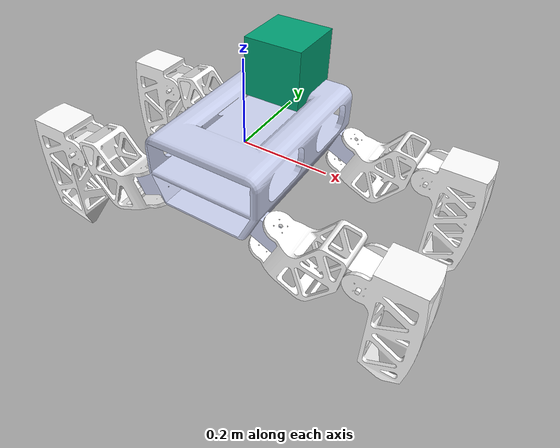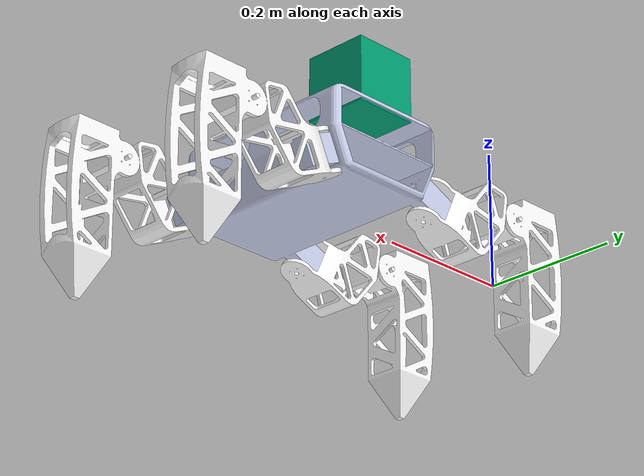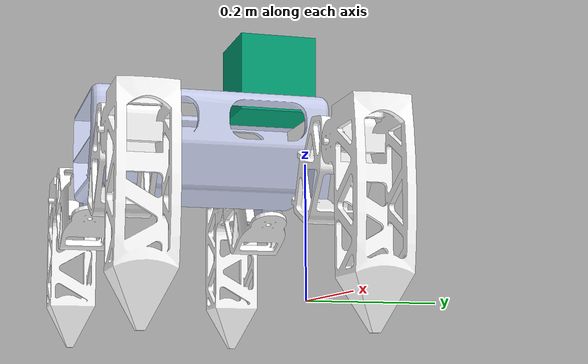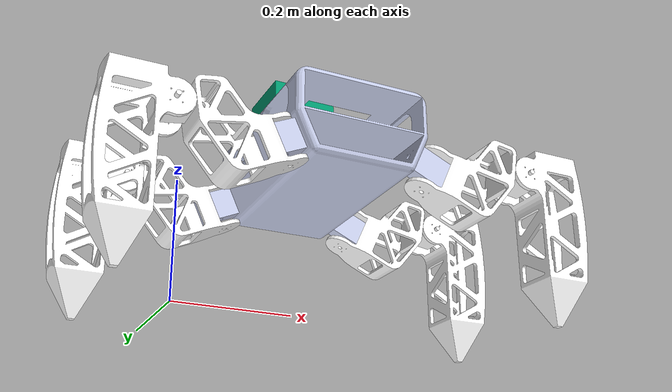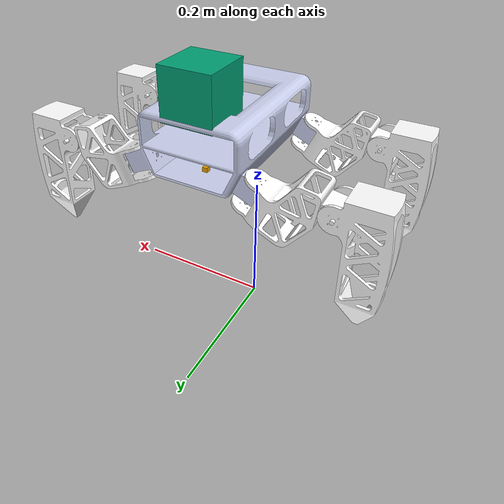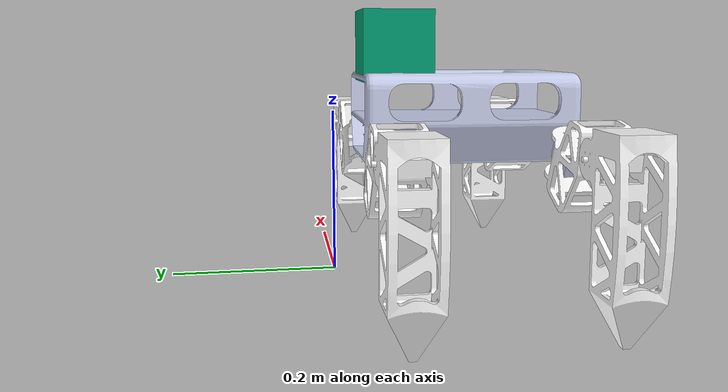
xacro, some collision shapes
<?xml version='1.0'?>
<robot name="insect" xmlns:xacro="http://www.ros.org/wiki/xacro">

<!-- Joint properties -->
<xacro:property name="pi" value="3.1415926535897931"/>
<xacro:property name="joint_lower_limit" value="-${pi/12}"/>
<xacro:property name="joint_upper_limit" value="${pi/12}"/>
<xacro:property name="joint_effort" value="6.0"/>
<xacro:property name="joint_velocity" value="0.524"/>

<xacro:property name="camera_link" value="0.01" /> <!-- Size of square 'camera' box -->
<!--macro param-->
<xacro:macro name="default_inertial" params="mass">
   <inertial>
     <mass value="${mass}" />
     <inertia ixx="1.0" ixy="0.0" ixz="0.0" iyy="1.0" iyz="0.0" izz="1.0" />
   </inertial>
 </xacro:macro>
  <!--IMU sensor_link-->
   <link name="imu_link">
     <visual>
       <origin xyz="0 0 0 " rpy="0 0 0" />
       <geometry>
         <box size="0.01 0.01 0.01"/> <!--box size="0.001 0.001 0.001"/-->
       </geometry>
     </visual>
     <collision>
       <origin rpy="0 0 0 " xyz="0 0 0"/>
       <geometry>
         <box size="0.01 0.01 0.01 "/>
       </geometry>
     </collision>
   </link>
   <!--IMU sensor joint-->
   <joint name="imu_joint" type="fixed">
     <axis xyz="0.01 0 0.01"/>
     <origin xyz="0.15 -0.1 0.132"/>
     <parent link="torso_base"/>
     <child link="imu_link"/>
   </joint>

   <!--camera link-->
   <link name="camera_link">
   <collision>
     <origin xyz="0 0 0" rpy="0 0 0"/>
     <geometry>
   <box size="${camera_link} ${camera_link} ${camera_link}"/>
     </geometry>
   </collision>

   <visual>
     <origin xyz="0 0 0" rpy="0 0 0"/>
     <geometry>
   <box size="${camera_link} ${camera_link} ${camera_link}"/>
     </geometry>
     <material name="red"/>
   </visual>

   <inertial>
     <mass value="1e-5" />
     <origin xyz="0 0 0" rpy="0 0 0"/>
     <inertia ixx="1e-6" ixy="0" ixz="0" iyy="1e-6" iyz="0" izz="1e-6" />
   </inertial>
 </link>
    <!--Camera sensor joint-->
    <joint name="camera_joint" type="fixed">
   <axis xyz="0 1 0" />
   <origin xyz="0.155 -0.06 0.25" rpy="0 0 ${pi/2}"/>
   <parent link="torso_base"/>
   <child link="camera_link"/>
 </joint>

   <link name="hokuyo_link">
       <collision>
           <origin xyz="0 0 0" rpy="0 0 0"/>
           <geometry>
               <box size="0.1 0.1 0.1"/>
           </geometry>
       </collision>
       <origin xyz="0 0 0" rpy="0 0 0"/>
           <geometry>

               <mesh filename="package://insect_1_description/meshes/hokuyo.dae"/>
           </geometry>

       <visual>
           <origin xyz="0 0 0" rpy="0 0 0"/>
           <geometry>

               <mesh filename="package://insect_1_description/meshes/hokuyo.dae"/>
           </geometry>
       </visual>

       <inertial>
           <mass value="1e-5" />
           <origin xyz="0 0 0" rpy="0 0 0"/>
           <inertia ixx="1e-6" ixy="0" ixz="0" iyy="1e-6" iyz="0" izz="1e-6" />
       </inertial>
   </link>

   <joint name="hokuyo_joint" type="fixed">
       <origin xyz="0.155 -0.10 0.28" rpy="0 0 ${pi/2  }"/>
       <parent link="torso_base"/>
       <child link="hokuyo_link"/>
       <axis xyz="0 0 1"/>
  </joint>

<link name="torso_base">
  <inertial>
    <origin
      xyz="0.155823674040498 -0.197142204072068 0.168908258984982"
      rpy="0 0 0" />
    <mass
      value="1.09435213027821" />
    <inertia
      ixx="1.0"
      ixy="0"
      ixz="0"
      iyy="1.0"
      iyz="0"
      izz="1.0" />
  </inertial>
  <visual>
    <origin xyz="0 0 0" rpy="0 0 0" />
    <geometry>
      <mesh filename="package://insect_1_description/meshes/Torso.STL" />
    </geometry>

    <material name="">
      <color rgba="0.792156862745098 0.819607843137255 0.933333333333333 1" />
    </material>
  </visual>
  <collision>
    <origin xyz="0 0 0" rpy="0 0 0" />
    <geometry>
      <mesh filename="package://insect_1_description/meshes/Torso.STL" />
    </geometry>
  </collision>
</link>

<link name="r_f_hip">
  <xacro:default_inertial mass="0.0280618431111951"/>
  <visual>
    <origin xyz="0 0 0" rpy="0 0 0" />
    <geometry>
      <mesh filename="package://insect_1_description/meshes/Empty_Link1.STL" />
    </geometry>
    <material name="">
      <color rgba="1 1 1 1" />
    </material>
  </visual>

  <collision>
    <origin xyz="0 0 0" rpy="0 0 0" />
    <geometry>
      <mesh filename="package://insect_1_description/meshes/Empty_Link1.STL" />
    </geometry>
  </collision>
</link>

<joint name="r_f_hip_joint" type="revolute">
  <origin xyz="0.225625426875454 -0.0726422157817547 0.0399579697018457" rpy="3.14159265358979 -1.14416883366802 1.34706698920462E-16" />
  <parent link="torso_base" />
  <child link="r_f_hip" />
  <limit lower="${joint_lower_limit}" upper="${joint_upper_limit}" effort="${joint_effort}" velocity="${joint_velocity}"/>
  <axis xyz="1 0 0" />
  </joint>

  <link name="r_f_limb">
    <xacro:default_inertial mass="0.0803002951506127"/>
    <visual>
          <origin xyz="0 0 0" rpy="0 0 0" />
          <geometry>
          <mesh filename="package://insect_1_description/meshes/Empty_Link11.STL" />
          </geometry>
          <material name="">
            <color rgba="1 1 1 1" />
          </material>
        </visual>

        <collision>
          <origin xyz="0 0 0" rpy="0 0 0" />
          <geometry>
          <mesh filename="package://insect_1_description/meshes/Empty_Link11.STL" />
          </geometry>
        </collision>
      </link>

    <joint name="r_f_limb_joint" type="revolute">
      <origin xyz="0.177388243676325 0 0.129225262065832" rpy="0 0.426627493126876 0" />
      <parent link="r_f_hip" />
      <child link="r_f_limb" />
        <limit lower="${joint_lower_limit}" upper="${joint_upper_limit}" effort="${joint_effort}" velocity="${joint_velocity}"/>
        <axis xyz="0 1 0" />
    </joint>

    <link name="r_b_hip">
      <xacro:default_inertial mass="0.0280618431112051"/>
      <visual>
       <origin xyz="0 0 0" rpy="0 0 0" />
        <geometry>
          <mesh filename="package://insect_1_description/meshes/Empty_Link2.STL" />
        </geometry>
        <material name="">
          <color rgba="1 1 1 1" />
        </material>
      </visual>

      <collision>
        <origin xyz="0 0 0" rpy="0 0 0" />
        <geometry>
          <mesh filename="package://insect_1_description/meshes/Empty_Link2.STL" />
        </geometry>
      </collision>
    </link>

    <joint name="r_b_hip_joint" type="revolute">
      <origin xyz="0.225625426875454 -0.321642215781755 0.0399579697018457" rpy="3.14159265358979 -1.14416883366802 1.34706698920462E-16" />
      <parent link="torso_base" />
      <child link="r_b_hip" />
      <limit lower="${joint_lower_limit}" upper="${joint_upper_limit}" effort="${joint_effort}" velocity="${joint_velocity}"/>
      <axis xyz="1 0 0" />
    </joint>

    <link name="r_b_limb">
      <xacro:default_inertial mass="0.0803002951506128"/>
       <visual>
        <origin xyz="0 0 0" rpy="0 0 0" />
        <geometry>
          <mesh filename="package://insect_1_description/meshes/Empty_Link22.STL" />
        </geometry>
        <material name="">
          <color rgba="1 1 1 1" />
        </material>
      </visual>

      <collision>
        <origin xyz="0 0 0" rpy="0 0 0" />
        <geometry>
          <mesh filename="package://insect_1_description/meshes/Empty_Link22.STL" />
        </geometry>
      </collision>
    </link>

    <joint
      name="r_b_limb_joint" type="revolute">
      <origin xyz="0.177388243676325 0 0.129225262065832" rpy="0 0.426627493126876 0" />
      <parent link="r_b_hip" />
      <child link="r_b_limb" />
      <limit lower="${joint_lower_limit}" upper="${joint_upper_limit}" effort="${joint_effort}" velocity="${joint_velocity}"/>
      <axis xyz="0 1 0" />
    </joint>

    <link name="l_f_hip">
      <xacro:default_inertial mass="0.028061843111217"/>
      <visual>
        <origin xyz="0 0 0" rpy="0 0 0" />
        <geometry>
          <mesh filename="package://insect_1_description/meshes/Empty_Link3.STL" />
        </geometry>
        <material name="">
          <color rgba="1 1 1 1" />
        </material>
      </visual>
      <collision>
        <origin xyz="0 0 0" rpy="0 0 0" />
        <geometry>
          <mesh
            filename="package://insect_1_description/meshes/Empty_Link3.STL" />
        </geometry>
      </collision>
    </link>

    <joint name="l_f_hip_joint" type="revolute">
      <origin xyz="0.0489501433341401 -0.0726422157817548 0.121498471038666" rpy="-3.14159265358979 -1.14416883366802 3.14159265358979" />
      <parent link="torso_base" />
      <child link="l_f_hip" />
      <limit lower="${joint_lower_limit}" upper="${joint_upper_limit}" effort="${joint_effort}" velocity="${joint_velocity}"/>
      <axis xyz="1 0 0" />
    </joint>

    <link name="l_f_limb">
      <xacro:default_inertial mass="0.0803002951506917"/>
      <visual>
        <origin xyz="0 0 0" rpy="0 0 0" />
        <geometry>
          <mesh filename="package://insect_1_description/meshes/Empty_Link33.STL" />
        </geometry>
        <material name="">
          <color rgba="1 1 1 1" />
        </material>
      </visual>
      <collision>
        <origin xyz="0 0 0" rpy="0 0 0" />
        <geometry>
          <mesh filename="package://insect_1_description/meshes/Empty_Link33.STL" />
        </geometry>
      </collision>
    </link>
    <joint name="l_f_limb_joint" type="revolute">
      <origin xyz="0.0878154069775051 0 0.129225262065832" rpy="0 0.426627493126877 0" />
      <parent link="l_f_hip" />
      <child link="l_f_limb" />
      <limit lower="${joint_lower_limit}" upper="${joint_upper_limit}" effort="${joint_effort}" velocity="${joint_velocity}"/>
      <axis xyz="0 -1 0" />
    </joint>

    <link name="l_b_hip">
      <xacro:default_inertial mass="0.0280618431112177"/>
      <inertial>
        <origin xyz="0.0469971216311395 -0.000689624605971217 0.0756385827767793" rpy="0 0 0" />
        <mass value="0.0280618431112177" />
        <inertia ixx="0" ixy="0" ixz="0"
                 iyy="0" iyz="0"
                 izz="0" />
      </inertial>
      <visual>
        <origin xyz="0 0 0" rpy="0 0 0" />
        <geometry>
          <mesh filename="package://insect_1_description/meshes/Empty_Link4.STL" />
        </geometry>
        <material name="">
          <color rgba="1 1 1 1" />
        </material>
      </visual>
      <collision>
        <origin xyz="0 0 0" rpy="0 0 0" />
        <geometry>
          <mesh
            filename="package://insect_1_description/meshes/Empty_Link4.STL" />
        </geometry>
      </collision>
    </link>
    <joint name="l_b_hip_joint" type="revolute">
      <origin xyz="0.0489501433341401 -0.321642215781755 0.121498471038666" rpy="-3.14159265358979 -1.14416883366802 3.14159265358979" />
      <parent link="torso_base" />
      <child link="l_b_hip" />
      <limit lower="${joint_lower_limit}" upper="${joint_upper_limit}" effort="${joint_effort}" velocity="${joint_velocity}"/>
      <axis xyz="1 0 0" />
    </joint>
    <link name="l_b_limb">
      <xacro:default_inertial mass="0.0803002951506863"/>
      <visual>
        <origin xyz="0 0 0" rpy="0 0 0" />
        <geometry>
          <mesh
            filename="package://insect_1_description/meshes/Empty_Link44.STL" />
        </geometry>
        <material name="">
          <color rgba="1 1 1 1" />
        </material>
      </visual>
      <collision>
        <origin xyz="0 0 0" rpy="0 0 0" />
        <geometry>
          <mesh
            filename="package://insect_1_description/meshes/Empty_Link44.STL" />
        </geometry>
      </collision>
    </link>
    <joint name="l_b_limb_joint" type="revolute">
      <origin xyz="0.087815406977505 0 0.129225262065832" rpy="0 0.426627493126876 0" />
      <parent link="l_b_hip" />
      <child link="l_b_limb" />
      <limit lower="${joint_lower_limit}" upper="${joint_upper_limit}" effort="${joint_effort}" velocity="${joint_velocity}"/>
      <axis xyz="0 -1 0" />
    </joint>

<transmission name="l_f_hip_transmission">
  <type>transmission_interface/SimpleTransmission</type>
  <joint name="l_f_hip_joint">
    <hardwareInterface>EffortJointInterface</hardwareInterface>
  </joint>
  <actuator name="l_f_hip_motor">
    <hardwareInterface>EffortJointInterface</hardwareInterface>
    <mechanicalReduction>1</mechanicalReduction>
  </actuator>
</transmission>

<transmission name="l_b_hip_transmission">
    <type>transmission_interface/SimpleTransmission</type>
    <joint name="l_b_hip_joint">
      <hardwareInterface>EffortJointInterface</hardwareInterface>
    </joint>
    <actuator name="l_b_hip_motor">
      <hardwareInterface>EffortJointInterface</hardwareInterface>
      <mechanicalReduction>1</mechanicalReduction>
    </actuator>
  </transmission>

<transmission name="r_f_hip_transmission">
    <type>transmission_interface/SimpleTransmission</type>
    <joint name="r_f_hip_joint">
      <hardwareInterface>EffortJointInterface</hardwareInterface>
    </joint>
    <actuator name="r_f_hip_motor">
      <hardwareInterface>EffortJointInterface</hardwareInterface>
      <mechanicalReduction>1</mechanicalReduction>
    </actuator>
  </transmission>

<transmission name="r_b_hip_transmission">
    <type>transmission_interface/SimpleTransmission</type>
    <joint name="r_b_hip_joint">
      <hardwareInterface>EffortJointInterface</hardwareInterface>
    </joint>
    <actuator name="r_b_hip_motor">
      <hardwareInterface>EffortJointInterface</hardwareInterface>
      <mechanicalReduction>1</mechanicalReduction>
    </actuator>
  </transmission>

<transmission name="l_f_limb_transmission">
    <type>transmission_interface/SimpleTransmission</type>
    <joint name="l_f_limb_joint">
      <hardwareInterface>EffortJointInterface</hardwareInterface>
    </joint>
    <actuator name="l_f_limb_motor">
      <hardwareInterface>EffortJointInterface</hardwareInterface>
      <mechanicalReduction>1</mechanicalReduction>
    </actuator>
  </transmission>

<transmission name="l_b_limb_transmission">
    <type>transmission_interface/SimpleTransmission</type>
    <joint name="l_b_limb_joint">
      <hardwareInterface>EffortJointInterface</hardwareInterface>
    </joint>
    <actuator name="l_b_limb_motor">
      <hardwareInterface>EffortJointInterface</hardwareInterface>
      <mechanicalReduction>1</mechanicalReduction>
    </actuator>
  </transmission>

<transmission name="r_f_limb_transmission">
    <type>transmission_interface/SimpleTransmission</type>
    <joint name="r_f_limb_joint">
      <hardwareInterface>EffortJointInterface</hardwareInterface>
    </joint>
    <actuator name="r_f_limb_motor">
      <hardwareInterface>EffortJointInterface</hardwareInterface>
      <mechanicalReduction>1</mechanicalReduction>
    </actuator>
  </transmission>

 <transmission name="r_b_limb_transmission">
    <type>transmission_interface/SimpleTransmission</type>
    <joint name="r_b_limb_joint">
      <hardwareInterface>EffortJointInterface</hardwareInterface>
    </joint>
    <actuator name="r_b_limb_motor">
      <hardwareInterface>EffortJointInterface</hardwareInterface>
      <mechanicalReduction>1</mechanicalReduction>
    </actuator>
  </transmission>

<!--contact_sensor_torso_base-->
<gazebo reference="torso_base">
  <sensor name="contact_sensor" type="contact">
    <always_on>true</always_on>
    <update_rate>15.0</update_rate>
    <contact>
      <collision>collision</collision>
    </contact>
    <plugin filename="libgazebo_ros_bumper.so" name="gazebo_ros_bumper_controller">
       <bumperTopicName>torso_contact_info</bumperTopicName>
      <frameName>torso_base</frameName>
    </plugin>
  </sensor>
</gazebo>
<gazebo>
     <plugin name="gazebo_ros_control" filename="libgazebo_ros_control.so">
       <robotNamespace>/insect</robotNamespace>
       <robotSimType>gazebo_ros_control/DefaultRobotHWSim</robotSimType>
       <legacyModeNS>true</legacyModeNS>
     </plugin>
</gazebo>

<gazebo>
  <plugin name="f3d_controller" filename="libgazebo_ros_f3d.so">
    <robotNamespace>/insect</robotNamespace>
    <alwaysOn>true</alwaysOn>
    <updateRate>50</updateRate>
    <bodyName>l_f_limb</bodyName>
    <topicName>l_f_limb_ground_feedback</topicName>
    <frameName>l_f_limb</frameName>
    </plugin>
</gazebo>

<gazebo>
  <plugin name="f3d_controller" filename="libgazebo_ros_f3d.so">
    <robotNamespace>/insect</robotNamespace>
    <alwaysOn>true</alwaysOn>
    <updateRate>50</updateRate>
    <bodyName>r_f_limb</bodyName>
    <topicName>r_f_limb_ground_feedback</topicName>
    <frameName>r_f_limb</frameName>
    </plugin>
</gazebo>

<gazebo>
  <plugin name="f3d_controller" filename="libgazebo_ros_f3d.so">
    <robotNamespace>/insect</robotNamespace>
    <alwaysOn>true</alwaysOn>
    <updateRate>50</updateRate>
    <bodyName>l_b_limb</bodyName>
    <topicName>l_b_limb_ground_feedback</topicName>
    <frameName>l_b_limb</frameName>
    </plugin>
</gazebo>
<gazebo>
  <plugin name="f3d_controller" filename="libgazebo_ros_f3d.so">
    <robotNamespace>/insect</robotNamespace>
    <alwaysOn>true</alwaysOn>
    <updateRate>50</updateRate>
    <bodyName>r_b_limb</bodyName>
    <topicName>r_b_limb_ground_feedback</topicName>
    <frameName>r_b_limb</frameName>
    </plugin>
</gazebo  >
<gazebo>
    <plugin name="gazebo_ros_imu_controller" filename="libgazebo_ros_imu.so">
        <robotNamespace>/insect</robotNamespace>
        <topicName>imu/data</topicName>
        <serviceName>imu/service</serviceName>
        <bodyName>torso_base</bodyName>
        <gaussianNoise>0</gaussianNoise>
        <rpyOffsets>0 0 0</rpyOffsets>
        <updateRate>10.0</updateRate>
        <alwaysOn>true</alwaysOn>
        <gaussianNoise>0</gaussianNoise>
    </plugin>
</gazebo>
<gazebo reference="hokuyo_link">
    <sensor type="ray" name="head_hokuyo_sensor">
        <pose>0 0 0 0 0 0</pose>
        <visualize>true</visualize>
        <update_rate>60</update_rate>
        <ray>
            <scan>
            <horizontal>
                <samples>720</samples>
                <resolution>1</resolution>
                <min_angle>-0.785</min_angle>
                <max_angle>0.785</max_angle>
            </horizontal>
            </scan>
            <range>
                <min>0.10</min>
                <max>5.0</max>
                <resolution>0.01</resolution>
            </range>
            <noise>
                <type>gaussian</type>
                <mean>0.0</mean>
                <stddev>0.01</stddev>
            </noise>
        </ray>
        <plugin name="laser" filename="libgazebo_ros_laser.so">
            <topicName>/scan</topicName>
            <frameName>hokuyo_link</frameName>
        </plugin>
    </sensor>
</gazebo>

<!-- camera -->
<!-- camera -->
  <gazebo reference="camera_link">
    <sensor type="camera" name="camera1">
      <update_rate>30.0</update_rate>
      <camera name="head">
        <horizontal_fov>1.3962634</horizontal_fov>
        <image>
          <width>800</width>
          <height>800</height>
          <format>R8G8B8</format>
        </image>
        <clip>
          <near>0.02</near>
          <far>300</far>
        </clip>
        <noise>
          <type>gaussian</type>
          <!-- Noise is sampled independently per pixel on each frame.
               That pixel's noise value is added to each of its color
               channels, which at that point lie in the range [0,1]. -->
          <mean>0.0</mean>
          <stddev>0.007</stddev>
        </noise>
      </camera>
      <plugin name="camera_controller" filename="libgazebo_ros_camera.so">
        <alwaysOn>true</alwaysOn>
        <updateRate>0.0</updateRate>
        <cameraName>insect1/camera1</cameraName>
        <imageTopicName>image_raw</imageTopicName>
        <cameraInfoTopicName>camera_info</cameraInfoTopicName>
        <frameName>camera_link</frameName>
        <hackBaseline>0.07</hackBaseline>
        <distortionK1>0.0</distortionK1>
        <distortionK2>0.0</distortionK2>
        <distortionK3>0.0</distortionK3>
        <distortionT1>0.0</distortionT1>
        <distortionT2>0.0</distortionT2>
      </plugin>
    </sensor>
  </gazebo>

  </robot>
